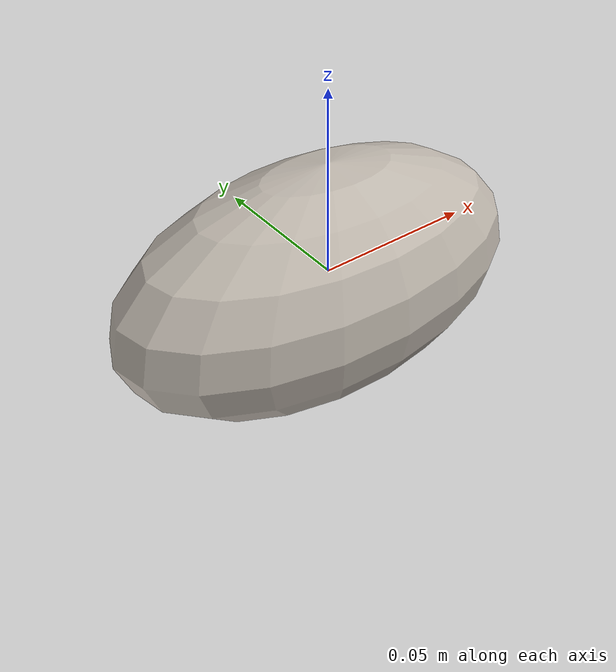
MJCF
<mujoco model="banana">
  <asset>
    <texture file="textures/fruits/banana.png" type="2d" name="tex-banana" />
    <material name="banana" reflectance="0.7" texrepeat="15 15" texture="tex-banana" texuniform="true"/>
  </asset>
  <worldbody>
    <body>
      <body name="collision">
        <geom pos="0 0 0" size="0.06 0.032 0.032" type="ellipsoid" solimp="0.998 0.998 0.001" solref="0.001 1" density="50" friction="0.95 0.3 0.1"  material="banana" group="1" condim="4"/>
      </body>

      <site rgba="0 0 0 0" size="0.005" pos="0 0 -0.045" name="bottom_site"/>
      <site rgba="0 0 0 0" size="0.005" pos="0 0 0.03" name="top_site"/>
      <site rgba="0 0 0 0" size="0.005" pos="0.06 0.06 0" name="horizontal_radius_site"/>
    </body>
  </worldbody>
</mujoco>
